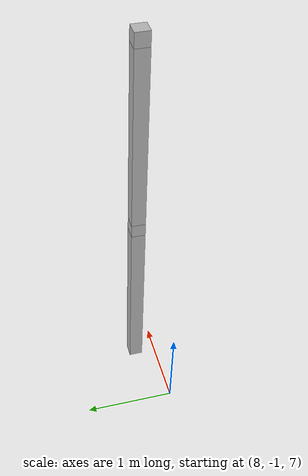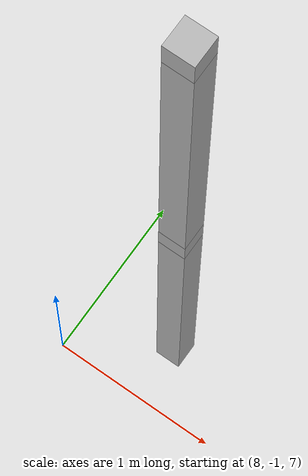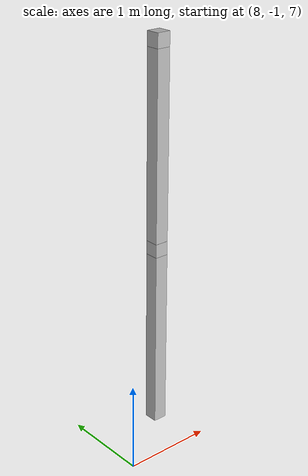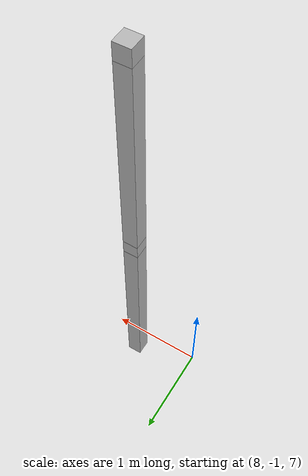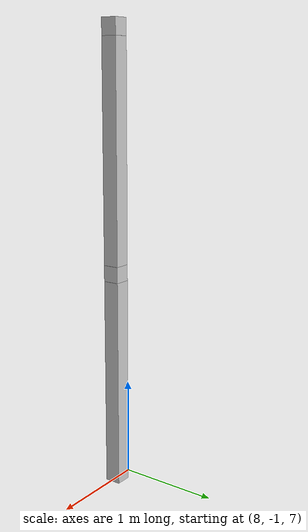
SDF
<sdf version="1.7">
 <world name="default">
  <model name="orthogonal_747_2.000.15_TS">
   <static>1</static>
   <link name="u_link_5_2_7">
    <inertial>
     <mass>1</mass>
     <inertia>
      <ixx>0.166667</ixx>
      <ixy>0</ixy>
      <ixz>0</ixz>
      <iyy>0.166667</iyy>
      <iyz>0</iyz>
      <izz>0.166667</izz>
     </inertia>
    </inertial>
    <pose>15.05 4.3 11.825 0 -0 0</pose>
    <visual name="visual_0">
     <laser_retro>4915</laser_retro>
     <geometry><box><size>0.15 1e-06 0.15</size></box></geometry>
     <material>
      <script><name>Gazebo/Grey</name><uri>file://media/materials/scripts/gazebo.material</uri></script>
      <shader type="pixel"><normal_map>__default__</normal_map></shader>
      <ambient>0.678 0.498 0.659 1</ambient>
      <diffuse>0.7 0.7 0.7 1</diffuse>
      <specular>0.01 0.01 0.01 1</specular>
      <emissive>0 0 0 1</emissive>
     </material>
     <pose>0 -0.075 0 0 -0 0</pose>
     <transparency>1</transparency>
    </visual>
    <visual name="visual_1">
     <laser_retro>4916</laser_retro>
     <geometry><box><size>0.15 1e-06 0.15</size></box></geometry>
     <material>
      <script><name>Gazebo/Grey</name><uri>file://media/materials/scripts/gazebo.material</uri></script>
      <shader type="pixel"><normal_map>__default__</normal_map></shader>
      <ambient>0.447 0.624 0.812 1</ambient>
      <diffuse>0.7 0.7 0.7 1</diffuse>
      <specular>0.01 0.01 0.01 1</specular>
      <emissive>0 0 0 1</emissive>
     </material>
     <pose>0 0.075 0 0 -0 0</pose>
     <transparency>1</transparency>
    </visual>
    <visual name="visual_2">
     <laser_retro>4917</laser_retro>
     <geometry><box><size>0.15 0.15 1e-06</size></box></geometry>
     <material>
      <script><name>Gazebo/Grey</name><uri>file://media/materials/scripts/gazebo.material</uri></script>
      <shader type="pixel"><normal_map>__default__</normal_map></shader>
      <ambient>0.988 0.686 0.243 1</ambient>
      <diffuse>0.7 0.7 0.7 1</diffuse>
      <specular>0.01 0.01 0.01 1</specular>
      <emissive>0 0 0 1</emissive>
     </material>
     <pose>0 0 -0.075 0 -0 0</pose>
     <transparency>1</transparency>
    </visual>
    <visual name="visual_3">
     <laser_retro>4918</laser_retro>
     <geometry><box><size>1e-06 0.15 0.15</size></box></geometry>
     <material>
      <script><name>Gazebo/Grey</name><uri>file://media/materials/scripts/gazebo.material</uri></script>
      <shader type="pixel"><normal_map>__default__</normal_map></shader>
      <ambient>0.988 0.914 0.31 1</ambient>
      <diffuse>0.7 0.7 0.7 1</diffuse>
      <specular>0.01 0.01 0.01 1</specular>
      <emissive>0 0 0 1</emissive>
     </material>
     <pose>0.075 0 0 0 -0 0</pose>
     <transparency>1</transparency>
    </visual>
    <visual name="visual_4">
     <laser_retro>4919</laser_retro>
     <geometry><box><size>0.15 0.15 1e-06</size></box></geometry>
     <material>
      <script><name>Gazebo/Grey</name><uri>file://media/materials/scripts/gazebo.material</uri></script>
      <shader type="pixel"><normal_map>__default__</normal_map></shader>
      <ambient>0.937 0.161 0.161 1</ambient>
      <diffuse>0.7 0.7 0.7 1</diffuse>
      <specular>0.01 0.01 0.01 1</specular>
      <emissive>0 0 0 1</emissive>
     </material>
     <pose>0 0 0.075 0 -0 0</pose>
     <transparency>1</transparency>
    </visual>
    <visual name="visual_5">
     <laser_retro>4920</laser_retro>
     <geometry><box><size>1e-06 0.15 0.15</size></box></geometry>
     <material>
      <script><name>Gazebo/Grey</name><uri>file://media/materials/scripts/gazebo.material</uri></script>
      <shader type="pixel"><normal_map>__default__</normal_map></shader>
      <ambient>0.541 0.886 0.204 1</ambient>
      <diffuse>0.7 0.7 0.7 1</diffuse>
      <specular>0.01 0.01 0.01 1</specular>
      <emissive>0 0 0 1</emissive>
     </material>
     <pose>-0.075 0 0 0 -0 0</pose>
     <transparency>1</transparency>
    </visual>
    <visual name="visual_texture">
     <geometry><box><size>0.149985 0.149985 0.149985</size></box></geometry>
     <material>
      <script>
       <uri>model://BASE_MODELS/simple_block_v2_textured/materials/scripts</uri>
       <uri>model://BASE_MODELS/simple_block_v2_textured/materials/textures</uri>
       <name>metal</name>
      </script>
     </material>
     <laser_retro>4921</laser_retro>
    </visual>
    <collision name="collision">
     <geometry><box><size>0.15 0.15 0.15</size></box></geometry>
     <surface>
      <friction>
       <ode><mu>1</mu><mu2>1</mu2><fdir1>0 0 0</fdir1><slip1>0</slip1><slip2>0</slip2></ode>
       <torsional>
        <coefficient>1</coefficient>
        <patch_radius>0</patch_radius>
        <surface_radius>0</surface_radius>
        <use_patch_radius>1</use_patch_radius>
        <ode><slip>0</slip></ode>
       </torsional>
      </friction>
      <bounce><restitution_coefficient>0</restitution_coefficient><threshold>1e+06</threshold></bounce>
      <contact>
       <collide_without_contact>0</collide_without_contact>
       <collide_without_contact_bitmask>1</collide_without_contact_bitmask>
       <collide_bitmask>1</collide_bitmask>
       <ode>
        <soft_cfm>0</soft_cfm>
        <soft_erp>0.2</soft_erp>
        <kp>1e+13</kp>
        <kd>1</kd>
        <max_vel>0.01</max_vel>
        <min_depth>0</min_depth>
       </ode>
       <bullet>
        <split_impulse>1</split_impulse>
        <split_impulse_penetration_threshold>-0.01</split_impulse_penetration_threshold>
        <soft_cfm>0</soft_cfm>
        <soft_erp>0.2</soft_erp>
        <kp>1e+13</kp>
        <kd>1</kd>
       </bullet>
      </contact>
     </surface>
    </collision>
   </link>
   <link name="z_link_5_2_7">
    <inertial>
     <mass>1</mass>
     <inertia>
      <ixx>0.166667</ixx>
      <ixy>0</ixy>
      <ixz>0</ixz>
      <iyy>0.166667</iyy>
      <iyz>0</iyz>
      <izz>0.166667</izz>
     </inertia>
    </inertial>
    <pose>15.05 4.3 10.75 0 -0 0</pose>
    <visual name="visual_0">
     <laser_retro>4922</laser_retro>
     <geometry><box><size>0.15 1e-06 2</size></box></geometry>
     <material>
      <script><name>Gazebo/Grey</name><uri>file://media/materials/scripts/gazebo.material</uri></script>
      <shader type="pixel"><normal_map>__default__</normal_map></shader>
      <ambient>0.678 0.498 0.659 1</ambient>
      <diffuse>0.7 0.7 0.7 1</diffuse>
      <specular>0.01 0.01 0.01 1</specular>
      <emissive>0 0 0 1</emissive>
     </material>
     <pose>0 -0.075 0 0 -0 0</pose>
     <transparency>1</transparency>
    </visual>
    <visual name="visual_1">
     <laser_retro>4923</laser_retro>
     <geometry><box><size>0.15 1e-06 2</size></box></geometry>
     <material>
      <script><name>Gazebo/Grey</name><uri>file://media/materials/scripts/gazebo.material</uri></script>
      <shader type="pixel"><normal_map>__default__</normal_map></shader>
      <ambient>0.447 0.624 0.812 1</ambient>
      <diffuse>0.7 0.7 0.7 1</diffuse>
      <specular>0.01 0.01 0.01 1</specular>
      <emissive>0 0 0 1</emissive>
     </material>
     <pose>0 0.075 0 0 -0 0</pose>
     <transparency>1</transparency>
    </visual>
    <visual name="visual_2">
     <laser_retro>4924</laser_retro>
     <geometry><box><size>0.15 0.15 1e-06</size></box></geometry>
     <material>
      <script><name>Gazebo/Grey</name><uri>file://media/materials/scripts/gazebo.material</uri></script>
      <shader type="pixel"><normal_map>__default__</normal_map></shader>
      <ambient>0.988 0.686 0.243 1</ambient>
      <diffuse>0.7 0.7 0.7 1</diffuse>
      <specular>0.01 0.01 0.01 1</specular>
      <emissive>0 0 0 1</emissive>
     </material>
     <pose>0 0 -1 0 -0 0</pose>
     <transparency>1</transparency>
    </visual>
    <visual name="visual_3">
     <laser_retro>4925</laser_retro>
     <geometry><box><size>1e-06 0.15 2</size></box></geometry>
     <material>
      <script><name>Gazebo/Grey</name><uri>file://media/materials/scripts/gazebo.material</uri></script>
      <shader type="pixel"><normal_map>__default__</normal_map></shader>
      <ambient>0.988 0.914 0.31 1</ambient>
      <diffuse>0.7 0.7 0.7 1</diffuse>
      <specular>0.01 0.01 0.01 1</specular>
      <emissive>0 0 0 1</emissive>
     </material>
     <pose>0.075 0 0 0 -0 0</pose>
     <transparency>1</transparency>
    </visual>
    <visual name="visual_4">
     <laser_retro>4926</laser_retro>
     <geometry><box><size>0.15 0.15 1e-06</size></box></geometry>
     <material>
      <script><name>Gazebo/Grey</name><uri>file://media/materials/scripts/gazebo.material</uri></script>
      <shader type="pixel"><normal_map>__default__</normal_map></shader>
      <ambient>0.937 0.161 0.161 1</ambient>
      <diffuse>0.7 0.7 0.7 1</diffuse>
      <specular>0.01 0.01 0.01 1</specular>
      <emissive>0 0 0 1</emissive>
     </material>
     <pose>0 0 1 0 -0 0</pose>
     <transparency>1</transparency>
    </visual>
    <visual name="visual_5">
     <laser_retro>4927</laser_retro>
     <geometry><box><size>1e-06 0.15 2</size></box></geometry>
     <material>
      <script><name>Gazebo/Grey</name><uri>file://media/materials/scripts/gazebo.material</uri></script>
      <shader type="pixel"><normal_map>__default__</normal_map></shader>
      <ambient>0.541 0.886 0.204 1</ambient>
      <diffuse>0.7 0.7 0.7 1</diffuse>
      <specular>0.01 0.01 0.01 1</specular>
      <emissive>0 0 0 1</emissive>
     </material>
     <pose>-0.075 0 0 0 -0 0</pose>
     <transparency>1</transparency>
    </visual>
    <visual name="visual_texture">
     <geometry><box><size>0.149985 0.149985 1.9998</size></box></geometry>
     <material>
      <script>
       <uri>model://BASE_MODELS/simple_block_v2_textured/materials/scripts</uri>
       <uri>model://BASE_MODELS/simple_block_v2_textured/materials/textures</uri>
       <name>metal</name>
      </script>
     </material>
     <laser_retro>4928</laser_retro>
    </visual>
    <collision name="collision">
     <geometry><box><size>0.15 0.15 2</size></box></geometry>
     <surface>
      <friction>
       <ode><mu>1</mu><mu2>1</mu2><fdir1>0 0 0</fdir1><slip1>0</slip1><slip2>0</slip2></ode>
       <torsional>
        <coefficient>1</coefficient>
        <patch_radius>0</patch_radius>
        <surface_radius>0</surface_radius>
        <use_patch_radius>1</use_patch_radius>
        <ode><slip>0</slip></ode>
       </torsional>
      </friction>
      <bounce><restitution_coefficient>0</restitution_coefficient><threshold>1e+06</threshold></bounce>
      <contact>
       <collide_without_contact>0</collide_without_contact>
       <collide_without_contact_bitmask>1</collide_without_contact_bitmask>
       <collide_bitmask>1</collide_bitmask>
       <ode>
        <soft_cfm>0</soft_cfm>
        <soft_erp>0.2</soft_erp>
        <kp>1e+13</kp>
        <kd>1</kd>
        <max_vel>0.01</max_vel>
        <min_depth>0</min_depth>
       </ode>
       <bullet>
        <split_impulse>1</split_impulse>
        <split_impulse_penetration_threshold>-0.01</split_impulse_penetration_threshold>
        <soft_cfm>0</soft_cfm>
        <soft_erp>0.2</soft_erp>
        <kp>1e+13</kp>
        <kd>1</kd>
       </bullet>
      </contact>
     </surface>
    </collision>
   </link>
   <link name="u_link_6_2_7">
    <inertial>
     <mass>1</mass>
     <inertia>
      <ixx>0.166667</ixx>
      <ixy>0</ixy>
      <ixz>0</ixz>
      <iyy>0.166667</iyy>
      <iyz>0</iyz>
      <izz>0.166667</izz>
     </inertia>
    </inertial>
    <pose>15.05 4.3 13.975 0 -0 0</pose>
    <visual name="visual_0">
     <laser_retro>5902</laser_retro>
     <geometry><box><size>0.15 1e-06 0.15</size></box></geometry>
     <material>
      <script><name>Gazebo/Grey</name><uri>file://media/materials/scripts/gazebo.material</uri></script>
      <shader type="pixel"><normal_map>__default__</normal_map></shader>
      <ambient>0.678 0.498 0.659 1</ambient>
      <diffuse>0.7 0.7 0.7 1</diffuse>
      <specular>0.01 0.01 0.01 1</specular>
      <emissive>0 0 0 1</emissive>
     </material>
     <pose>0 -0.075 0 0 -0 0</pose>
     <transparency>1</transparency>
    </visual>
    <visual name="visual_1">
     <laser_retro>5903</laser_retro>
     <geometry><box><size>0.15 1e-06 0.15</size></box></geometry>
     <material>
      <script><name>Gazebo/Grey</name><uri>file://media/materials/scripts/gazebo.material</uri></script>
      <shader type="pixel"><normal_map>__default__</normal_map></shader>
      <ambient>0.447 0.624 0.812 1</ambient>
      <diffuse>0.7 0.7 0.7 1</diffuse>
      <specular>0.01 0.01 0.01 1</specular>
      <emissive>0 0 0 1</emissive>
     </material>
     <pose>0 0.075 0 0 -0 0</pose>
     <transparency>1</transparency>
    </visual>
    <visual name="visual_2">
     <laser_retro>5904</laser_retro>
     <geometry><box><size>0.15 0.15 1e-06</size></box></geometry>
     <material>
      <script><name>Gazebo/Grey</name><uri>file://media/materials/scripts/gazebo.material</uri></script>
      <shader type="pixel"><normal_map>__default__</normal_map></shader>
      <ambient>0.988 0.686 0.243 1</ambient>
      <diffuse>0.7 0.7 0.7 1</diffuse>
      <specular>0.01 0.01 0.01 1</specular>
      <emissive>0 0 0 1</emissive>
     </material>
     <pose>0 0 -0.075 0 -0 0</pose>
     <transparency>1</transparency>
    </visual>
    <visual name="visual_3">
     <laser_retro>5905</laser_retro>
     <geometry><box><size>1e-06 0.15 0.15</size></box></geometry>
     <material>
      <script><name>Gazebo/Grey</name><uri>file://media/materials/scripts/gazebo.material</uri></script>
      <shader type="pixel"><normal_map>__default__</normal_map></shader>
      <ambient>0.988 0.914 0.31 1</ambient>
      <diffuse>0.7 0.7 0.7 1</diffuse>
      <specular>0.01 0.01 0.01 1</specular>
      <emissive>0 0 0 1</emissive>
     </material>
     <pose>0.075 0 0 0 -0 0</pose>
     <transparency>1</transparency>
    </visual>
    <visual name="visual_4">
     <laser_retro>5906</laser_retro>
     <geometry><box><size>0.15 0.15 1e-06</size></box></geometry>
     <material>
      <script><name>Gazebo/Grey</name><uri>file://media/materials/scripts/gazebo.material</uri></script>
      <shader type="pixel"><normal_map>__default__</normal_map></shader>
      <ambient>0.937 0.161 0.161 1</ambient>
      <diffuse>0.7 0.7 0.7 1</diffuse>
      <specular>0.01 0.01 0.01 1</specular>
      <emissive>0 0 0 1</emissive>
     </material>
     <pose>0 0 0.075 0 -0 0</pose>
     <transparency>1</transparency>
    </visual>
    <visual name="visual_5">
     <laser_retro>5907</laser_retro>
     <geometry><box><size>1e-06 0.15 0.15</size></box></geometry>
     <material>
      <script><name>Gazebo/Grey</name><uri>file://media/materials/scripts/gazebo.material</uri></script>
      <shader type="pixel"><normal_map>__default__</normal_map></shader>
      <ambient>0.541 0.886 0.204 1</ambient>
      <diffuse>0.7 0.7 0.7 1</diffuse>
      <specular>0.01 0.01 0.01 1</specular>
      <emissive>0 0 0 1</emissive>
     </material>
     <pose>-0.075 0 0 0 -0 0</pose>
     <transparency>1</transparency>
    </visual>
    <visual name="visual_texture">
     <geometry><box><size>0.149985 0.149985 0.149985</size></box></geometry>
     <material>
      <script>
       <uri>model://BASE_MODELS/simple_block_v2_textured/materials/scripts</uri>
       <uri>model://BASE_MODELS/simple_block_v2_textured/materials/textures</uri>
       <name>metal</name>
      </script>
     </material>
     <laser_retro>5908</laser_retro>
    </visual>
    <collision name="collision">
     <geometry><box><size>0.15 0.15 0.15</size></box></geometry>
     <surface>
      <friction>
       <ode><mu>1</mu><mu2>1</mu2><fdir1>0 0 0</fdir1><slip1>0</slip1><slip2>0</slip2></ode>
       <torsional>
        <coefficient>1</coefficient>
        <patch_radius>0</patch_radius>
        <surface_radius>0</surface_radius>
        <use_patch_radius>1</use_patch_radius>
        <ode><slip>0</slip></ode>
       </torsional>
      </friction>
      <bounce><restitution_coefficient>0</restitution_coefficient><threshold>1e+06</threshold></bounce>
      <contact>
       <collide_without_contact>0</collide_without_contact>
       <collide_without_contact_bitmask>1</collide_without_contact_bitmask>
       <collide_bitmask>1</collide_bitmask>
       <ode>
        <soft_cfm>0</soft_cfm>
        <soft_erp>0.2</soft_erp>
        <kp>1e+13</kp>
        <kd>1</kd>
        <max_vel>0.01</max_vel>
        <min_depth>0</min_depth>
       </ode>
       <bullet>
        <split_impulse>1</split_impulse>
        <split_impulse_penetration_threshold>-0.01</split_impulse_penetration_threshold>
        <soft_cfm>0</soft_cfm>
        <soft_erp>0.2</soft_erp>
        <kp>1e+13</kp>
        <kd>1</kd>
       </bullet>
      </contact>
     </surface>
    </collision>
   </link>
   <link name="z_link_6_2_7">
    <inertial>
     <mass>1</mass>
     <inertia>
      <ixx>0.166667</ixx>
      <ixy>0</ixy>
      <ixz>0</ixz>
      <iyy>0.166667</iyy>
      <iyz>0</iyz>
      <izz>0.166667</izz>
     </inertia>
    </inertial>
    <pose>15.05 4.3 12.9 0 -0 0</pose>
    <visual name="visual_0">
     <laser_retro>5909</laser_retro>
     <geometry><box><size>0.15 1e-06 2</size></box></geometry>
     <material>
      <script><name>Gazebo/Grey</name><uri>file://media/materials/scripts/gazebo.material</uri></script>
      <shader type="pixel"><normal_map>__default__</normal_map></shader>
      <ambient>0.678 0.498 0.659 1</ambient>
      <diffuse>0.7 0.7 0.7 1</diffuse>
      <specular>0.01 0.01 0.01 1</specular>
      <emissive>0 0 0 1</emissive>
     </material>
     <pose>0 -0.075 0 0 -0 0</pose>
     <transparency>1</transparency>
    </visual>
    <visual name="visual_1">
     <laser_retro>5910</laser_retro>
     <geometry><box><size>0.15 1e-06 2</size></box></geometry>
     <material>
      <script><name>Gazebo/Grey</name><uri>file://media/materials/scripts/gazebo.material</uri></script>
      <shader type="pixel"><normal_map>__default__</normal_map></shader>
      <ambient>0.447 0.624 0.812 1</ambient>
      <diffuse>0.7 0.7 0.7 1</diffuse>
      <specular>0.01 0.01 0.01 1</specular>
      <emissive>0 0 0 1</emissive>
     </material>
     <pose>0 0.075 0 0 -0 0</pose>
     <transparency>1</transparency>
    </visual>
    <visual name="visual_2">
     <laser_retro>5911</laser_retro>
     <geometry><box><size>0.15 0.15 1e-06</size></box></geometry>
     <material>
      <script><name>Gazebo/Grey</name><uri>file://media/materials/scripts/gazebo.material</uri></script>
      <shader type="pixel"><normal_map>__default__</normal_map></shader>
      <ambient>0.988 0.686 0.243 1</ambient>
      <diffuse>0.7 0.7 0.7 1</diffuse>
      <specular>0.01 0.01 0.01 1</specular>
      <emissive>0 0 0 1</emissive>
     </material>
     <pose>0 0 -1 0 -0 0</pose>
     <transparency>1</transparency>
    </visual>
    <visual name="visual_3">
     <laser_retro>5912</laser_retro>
     <geometry><box><size>1e-06 0.15 2</size></box></geometry>
     <material>
      <script><name>Gazebo/Grey</name><uri>file://media/materials/scripts/gazebo.material</uri></script>
      <shader type="pixel"><normal_map>__default__</normal_map></shader>
      <ambient>0.988 0.914 0.31 1</ambient>
      <diffuse>0.7 0.7 0.7 1</diffuse>
      <specular>0.01 0.01 0.01 1</specular>
      <emissive>0 0 0 1</emissive>
     </material>
     <pose>0.075 0 0 0 -0 0</pose>
     <transparency>1</transparency>
    </visual>
    <visual name="visual_4">
     <laser_retro>5913</laser_retro>
     <geometry><box><size>0.15 0.15 1e-06</size></box></geometry>
     <material>
      <script><name>Gazebo/Grey</name><uri>file://media/materials/scripts/gazebo.material</uri></script>
      <shader type="pixel"><normal_map>__default__</normal_map></shader>
      <ambient>0.937 0.161 0.161 1</ambient>
      <diffuse>0.7 0.7 0.7 1</diffuse>
      <specular>0.01 0.01 0.01 1</specular>
      <emissive>0 0 0 1</emissive>
     </material>
     <pose>0 0 1 0 -0 0</pose>
     <transparency>1</transparency>
    </visual>
    <visual name="visual_5">
     <laser_retro>5914</laser_retro>
     <geometry><box><size>1e-06 0.15 2</size></box></geometry>
     <material>
      <script><name>Gazebo/Grey</name><uri>file://media/materials/scripts/gazebo.material</uri></script>
      <shader type="pixel"><normal_map>__default__</normal_map></shader>
      <ambient>0.541 0.886 0.204 1</ambient>
      <diffuse>0.7 0.7 0.7 1</diffuse>
      <specular>0.01 0.01 0.01 1</specular>
      <emissive>0 0 0 1</emissive>
     </material>
     <pose>-0.075 0 0 0 -0 0</pose>
     <transparency>1</transparency>
    </visual>
    <visual name="visual_texture">
     <geometry><box><size>0.149985 0.149985 1.9998</size></box></geometry>
     <material>
      <script>
       <uri>model://BASE_MODELS/simple_block_v2_textured/materials/scripts</uri>
       <uri>model://BASE_MODELS/simple_block_v2_textured/materials/textures</uri>
       <name>metal</name>
      </script>
     </material>
     <laser_retro>5915</laser_retro>
    </visual>
    <collision name="collision">
     <geometry><box><size>0.15 0.15 2</size></box></geometry>
     <surface>
      <friction>
       <ode><mu>1</mu><mu2>1</mu2><fdir1>0 0 0</fdir1><slip1>0</slip1><slip2>0</slip2></ode>
       <torsional>
        <coefficient>1</coefficient>
        <patch_radius>0</patch_radius>
        <surface_radius>0</surface_radius>
        <use_patch_radius>1</use_patch_radius>
        <ode><slip>0</slip></ode>
       </torsional>
      </friction>
      <bounce><restitution_coefficient>0</restitution_coefficient><threshold>1e+06</threshold></bounce>
      <contact>
       <collide_without_contact>0</collide_without_contact>
       <collide_without_contact_bitmask>1</collide_without_contact_bitmask>
       <collide_bitmask>1</collide_bitmask>
       <ode>
        <soft_cfm>0</soft_cfm>
        <soft_erp>0.2</soft_erp>
        <kp>1e+13</kp>
        <kd>1</kd>
        <max_vel>0.01</max_vel>
        <min_depth>0</min_depth>
       </ode>
       <bullet>
        <split_impulse>1</split_impulse>
        <split_impulse_penetration_threshold>-0.01</split_impulse_penetration_threshold>
        <soft_cfm>0</soft_cfm>
        <soft_erp>0.2</soft_erp>
        <kp>1e+13</kp>
        <kd>1</kd>
       </bullet>
      </contact>
     </surface>
    </collision>
   </link>
   <pose>-6.47624 -5 -2.5 0 -0 0</pose>
  </model>
 </world>
</sdf>
